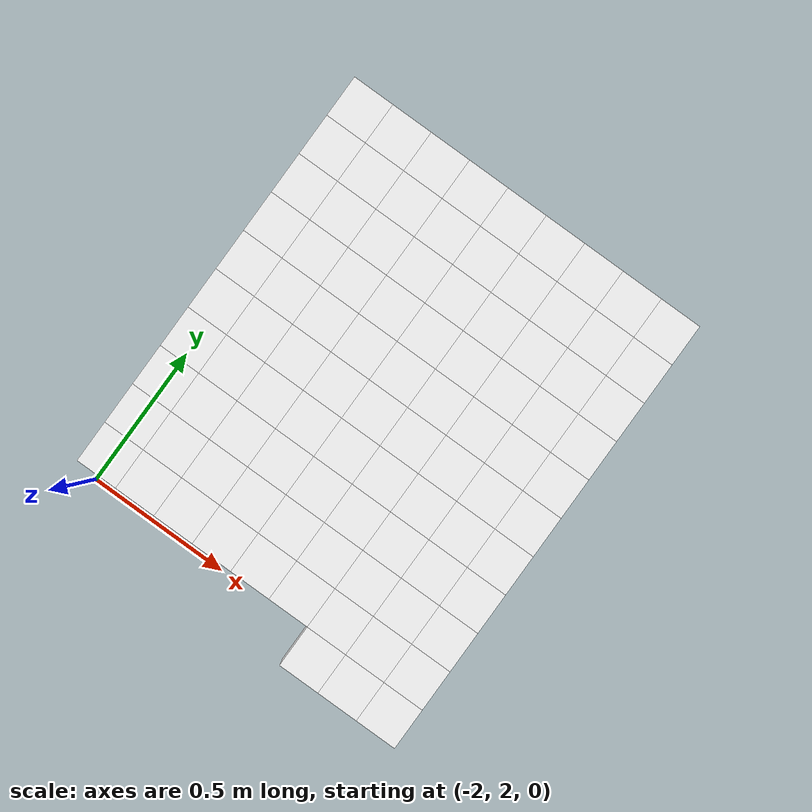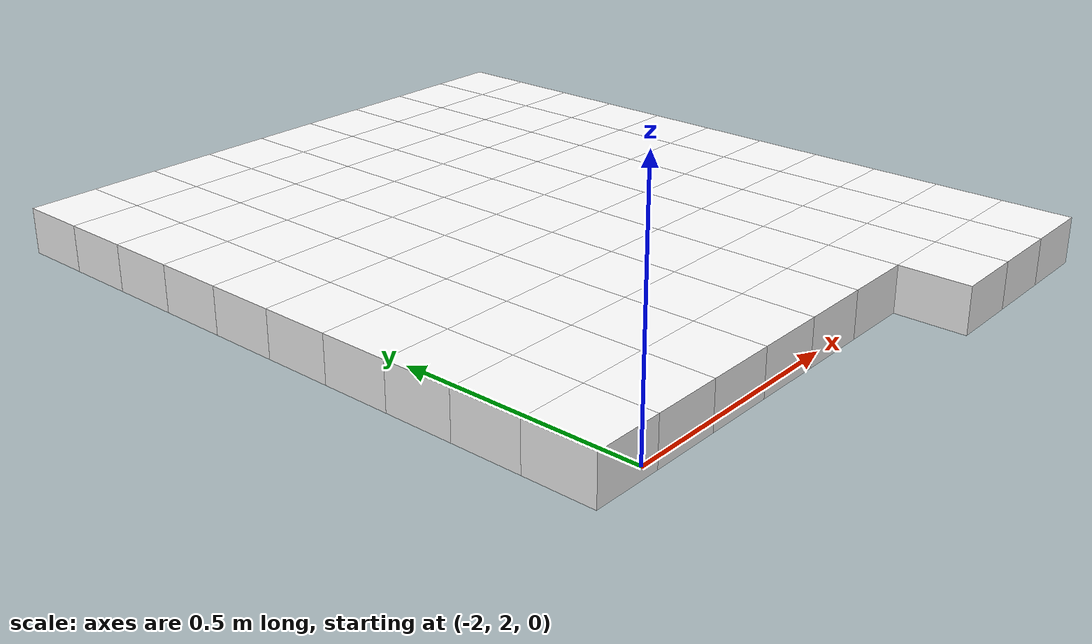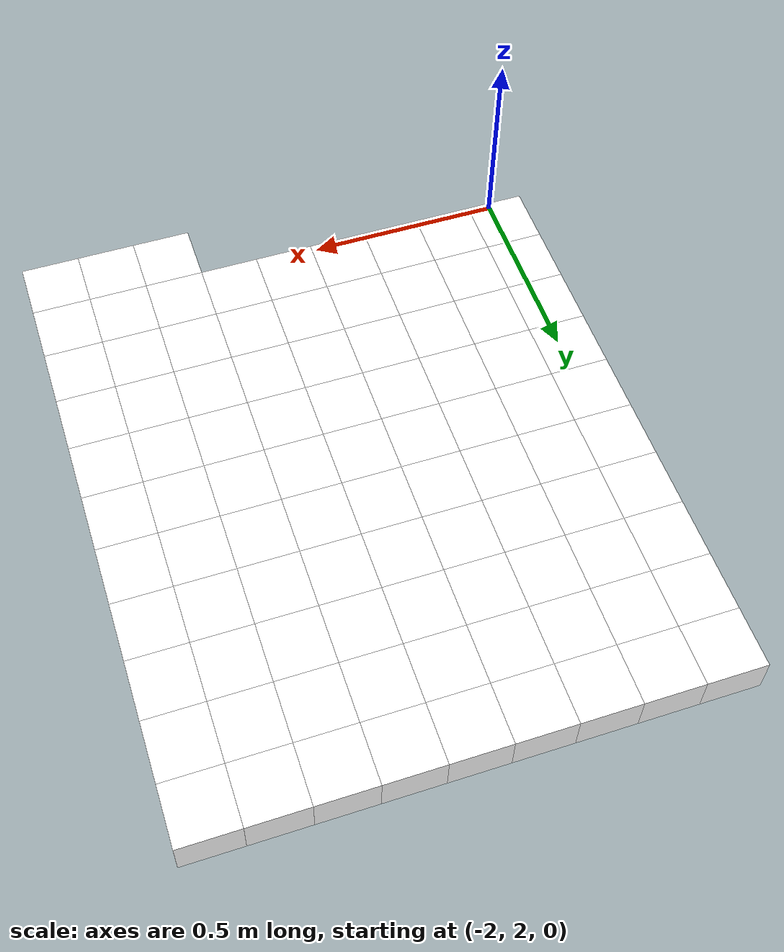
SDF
<sdf version="1.7">
 <world name="default">
  <include><uri>model://sun</uri></include>
  <model name="static_environment">
   <static>true</static>
   <link name="region_186">
    <pose>-1.1 1.9499999999999997 0.0 0.0 0.0 0.0</pose>
    <collision name="region_186_collision">
     <geometry><box><size>0.15 0.15 0.1</size></box></geometry>
     <surface><friction><ode><mu>1.0</mu><mu2>1.0</mu2></ode></friction></surface>
    </collision>
    <visual name="region_186_visual">
     <geometry><box><size>0.15 0.15 0.1</size></box></geometry>
     <material><ambient>1.0 1.0 1.0 1.0</ambient><diffuse>1.0 1.0 1.0 1.0</diffuse></material>
    </visual>
   </link>
   <link name="region_187">
    <pose>-0.95 1.9499999999999997 0.0 0.0 0.0 0.0</pose>
    <collision name="region_187_collision">
     <geometry><box><size>0.15 0.15 0.1</size></box></geometry>
     <surface><friction><ode><mu>1.0</mu><mu2>1.0</mu2></ode></friction></surface>
    </collision>
    <visual name="region_187_visual">
     <geometry><box><size>0.15 0.15 0.1</size></box></geometry>
     <material><ambient>1.0 1.0 1.0 1.0</ambient><diffuse>1.0 1.0 1.0 1.0</diffuse></material>
    </visual>
   </link>
   <link name="region_188">
    <pose>-0.8 1.9499999999999997 0.0 0.0 0.0 0.0</pose>
    <collision name="region_188_collision">
     <geometry><box><size>0.15 0.15 0.1</size></box></geometry>
     <surface><friction><ode><mu>1.0</mu><mu2>1.0</mu2></ode></friction></surface>
    </collision>
    <visual name="region_188_visual">
     <geometry><box><size>0.15 0.15 0.1</size></box></geometry>
     <material><ambient>1.0 1.0 1.0 1.0</ambient><diffuse>1.0 1.0 1.0 1.0</diffuse></material>
    </visual>
   </link>
   <link name="region_200">
    <pose>-2.0 2.0999999999999996 0.0 0.0 0.0 0.0</pose>
    <collision name="region_200_collision">
     <geometry><box><size>0.15 0.15 0.1</size></box></geometry>
     <surface><friction><ode><mu>1.0</mu><mu2>1.0</mu2></ode></friction></surface>
    </collision>
    <visual name="region_200_visual">
     <geometry><box><size>0.15 0.15 0.1</size></box></geometry>
     <material><ambient>1.0 1.0 1.0 1.0</ambient><diffuse>1.0 1.0 1.0 1.0</diffuse></material>
    </visual>
   </link>
   <link name="region_201">
    <pose>-1.85 2.0999999999999996 0.0 0.0 0.0 0.0</pose>
    <collision name="region_201_collision">
     <geometry><box><size>0.15 0.15 0.1</size></box></geometry>
     <surface><friction><ode><mu>1.0</mu><mu2>1.0</mu2></ode></friction></surface>
    </collision>
    <visual name="region_201_visual">
     <geometry><box><size>0.15 0.15 0.1</size></box></geometry>
     <material><ambient>1.0 1.0 1.0 1.0</ambient><diffuse>1.0 1.0 1.0 1.0</diffuse></material>
    </visual>
   </link>
   <link name="region_202">
    <pose>-1.7 2.0999999999999996 0.0 0.0 0.0 0.0</pose>
    <collision name="region_202_collision">
     <geometry><box><size>0.15 0.15 0.1</size></box></geometry>
     <surface><friction><ode><mu>1.0</mu><mu2>1.0</mu2></ode></friction></surface>
    </collision>
    <visual name="region_202_visual">
     <geometry><box><size>0.15 0.15 0.1</size></box></geometry>
     <material><ambient>1.0 1.0 1.0 1.0</ambient><diffuse>1.0 1.0 1.0 1.0</diffuse></material>
    </visual>
   </link>
   <link name="region_203">
    <pose>-1.55 2.0999999999999996 0.0 0.0 0.0 0.0</pose>
    <collision name="region_203_collision">
     <geometry><box><size>0.15 0.15 0.1</size></box></geometry>
     <surface><friction><ode><mu>1.0</mu><mu2>1.0</mu2></ode></friction></surface>
    </collision>
    <visual name="region_203_visual">
     <geometry><box><size>0.15 0.15 0.1</size></box></geometry>
     <material><ambient>1.0 1.0 1.0 1.0</ambient><diffuse>1.0 1.0 1.0 1.0</diffuse></material>
    </visual>
   </link>
   <link name="region_204">
    <pose>-1.4 2.0999999999999996 0.0 0.0 0.0 0.0</pose>
    <collision name="region_204_collision">
     <geometry><box><size>0.15 0.15 0.1</size></box></geometry>
     <surface><friction><ode><mu>1.0</mu><mu2>1.0</mu2></ode></friction></surface>
    </collision>
    <visual name="region_204_visual">
     <geometry><box><size>0.15 0.15 0.1</size></box></geometry>
     <material><ambient>1.0 1.0 1.0 1.0</ambient><diffuse>1.0 1.0 1.0 1.0</diffuse></material>
    </visual>
   </link>
   <link name="region_205">
    <pose>-1.25 2.0999999999999996 0.0 0.0 0.0 0.0</pose>
    <collision name="region_205_collision">
     <geometry><box><size>0.15 0.15 0.1</size></box></geometry>
     <surface><friction><ode><mu>1.0</mu><mu2>1.0</mu2></ode></friction></surface>
    </collision>
    <visual name="region_205_visual">
     <geometry><box><size>0.15 0.15 0.1</size></box></geometry>
     <material><ambient>1.0 1.0 1.0 1.0</ambient><diffuse>1.0 1.0 1.0 1.0</diffuse></material>
    </visual>
   </link>
   <link name="region_206">
    <pose>-1.1 2.0999999999999996 0.0 0.0 0.0 0.0</pose>
    <collision name="region_206_collision">
     <geometry><box><size>0.15 0.15 0.1</size></box></geometry>
     <surface><friction><ode><mu>1.0</mu><mu2>1.0</mu2></ode></friction></surface>
    </collision>
    <visual name="region_206_visual">
     <geometry><box><size>0.15 0.15 0.1</size></box></geometry>
     <material><ambient>1.0 1.0 1.0 1.0</ambient><diffuse>1.0 1.0 1.0 1.0</diffuse></material>
    </visual>
   </link>
   <link name="region_207">
    <pose>-0.95 2.0999999999999996 0.0 0.0 0.0 0.0</pose>
    <collision name="region_207_collision">
     <geometry><box><size>0.15 0.15 0.1</size></box></geometry>
     <surface><friction><ode><mu>1.0</mu><mu2>1.0</mu2></ode></friction></surface>
    </collision>
    <visual name="region_207_visual">
     <geometry><box><size>0.15 0.15 0.1</size></box></geometry>
     <material><ambient>1.0 1.0 1.0 1.0</ambient><diffuse>1.0 1.0 1.0 1.0</diffuse></material>
    </visual>
   </link>
   <link name="region_208">
    <pose>-0.8 2.0999999999999996 0.0 0.0 0.0 0.0</pose>
    <collision name="region_208_collision">
     <geometry><box><size>0.15 0.15 0.1</size></box></geometry>
     <surface><friction><ode><mu>1.0</mu><mu2>1.0</mu2></ode></friction></surface>
    </collision>
    <visual name="region_208_visual">
     <geometry><box><size>0.15 0.15 0.1</size></box></geometry>
     <material><ambient>1.0 1.0 1.0 1.0</ambient><diffuse>1.0 1.0 1.0 1.0</diffuse></material>
    </visual>
   </link>
   <link name="region_220">
    <pose>-2.0 2.2499999999999996 0.0 0.0 0.0 0.0</pose>
    <collision name="region_220_collision">
     <geometry><box><size>0.15 0.15 0.1</size></box></geometry>
     <surface><friction><ode><mu>1.0</mu><mu2>1.0</mu2></ode></friction></surface>
    </collision>
    <visual name="region_220_visual">
     <geometry><box><size>0.15 0.15 0.1</size></box></geometry>
     <material><ambient>1.0 1.0 1.0 1.0</ambient><diffuse>1.0 1.0 1.0 1.0</diffuse></material>
    </visual>
   </link>
   <link name="region_221">
    <pose>-1.85 2.2499999999999996 0.0 0.0 0.0 0.0</pose>
    <collision name="region_221_collision">
     <geometry><box><size>0.15 0.15 0.1</size></box></geometry>
     <surface><friction><ode><mu>1.0</mu><mu2>1.0</mu2></ode></friction></surface>
    </collision>
    <visual name="region_221_visual">
     <geometry><box><size>0.15 0.15 0.1</size></box></geometry>
     <material><ambient>1.0 1.0 1.0 1.0</ambient><diffuse>1.0 1.0 1.0 1.0</diffuse></material>
    </visual>
   </link>
   <link name="region_222">
    <pose>-1.7 2.2499999999999996 0.0 0.0 0.0 0.0</pose>
    <collision name="region_222_collision">
     <geometry><box><size>0.15 0.15 0.1</size></box></geometry>
     <surface><friction><ode><mu>1.0</mu><mu2>1.0</mu2></ode></friction></surface>
    </collision>
    <visual name="region_222_visual">
     <geometry><box><size>0.15 0.15 0.1</size></box></geometry>
     <material><ambient>1.0 1.0 1.0 1.0</ambient><diffuse>1.0 1.0 1.0 1.0</diffuse></material>
    </visual>
   </link>
   <link name="region_223">
    <pose>-1.55 2.2499999999999996 0.0 0.0 0.0 0.0</pose>
    <collision name="region_223_collision">
     <geometry><box><size>0.15 0.15 0.1</size></box></geometry>
     <surface><friction><ode><mu>1.0</mu><mu2>1.0</mu2></ode></friction></surface>
    </collision>
    <visual name="region_223_visual">
     <geometry><box><size>0.15 0.15 0.1</size></box></geometry>
     <material><ambient>1.0 1.0 1.0 1.0</ambient><diffuse>1.0 1.0 1.0 1.0</diffuse></material>
    </visual>
   </link>
   <link name="region_224">
    <pose>-1.4 2.2499999999999996 0.0 0.0 0.0 0.0</pose>
    <collision name="region_224_collision">
     <geometry><box><size>0.15 0.15 0.1</size></box></geometry>
     <surface><friction><ode><mu>1.0</mu><mu2>1.0</mu2></ode></friction></surface>
    </collision>
    <visual name="region_224_visual">
     <geometry><box><size>0.15 0.15 0.1</size></box></geometry>
     <material><ambient>1.0 1.0 1.0 1.0</ambient><diffuse>1.0 1.0 1.0 1.0</diffuse></material>
    </visual>
   </link>
   <link name="region_225">
    <pose>-1.25 2.2499999999999996 0.0 0.0 0.0 0.0</pose>
    <collision name="region_225_collision">
     <geometry><box><size>0.15 0.15 0.1</size></box></geometry>
     <surface><friction><ode><mu>1.0</mu><mu2>1.0</mu2></ode></friction></surface>
    </collision>
    <visual name="region_225_visual">
     <geometry><box><size>0.15 0.15 0.1</size></box></geometry>
     <material><ambient>1.0 1.0 1.0 1.0</ambient><diffuse>1.0 1.0 1.0 1.0</diffuse></material>
    </visual>
   </link>
   <link name="region_226">
    <pose>-1.1 2.2499999999999996 0.0 0.0 0.0 0.0</pose>
    <collision name="region_226_collision">
     <geometry><box><size>0.15 0.15 0.1</size></box></geometry>
     <surface><friction><ode><mu>1.0</mu><mu2>1.0</mu2></ode></friction></surface>
    </collision>
    <visual name="region_226_visual">
     <geometry><box><size>0.15 0.15 0.1</size></box></geometry>
     <material><ambient>1.0 1.0 1.0 1.0</ambient><diffuse>1.0 1.0 1.0 1.0</diffuse></material>
    </visual>
   </link>
   <link name="region_227">
    <pose>-0.95 2.2499999999999996 0.0 0.0 0.0 0.0</pose>
    <collision name="region_227_collision">
     <geometry><box><size>0.15 0.15 0.1</size></box></geometry>
     <surface><friction><ode><mu>1.0</mu><mu2>1.0</mu2></ode></friction></surface>
    </collision>
    <visual name="region_227_visual">
     <geometry><box><size>0.15 0.15 0.1</size></box></geometry>
     <material><ambient>1.0 1.0 1.0 1.0</ambient><diffuse>1.0 1.0 1.0 1.0</diffuse></material>
    </visual>
   </link>
   <link name="region_228">
    <pose>-0.8 2.2499999999999996 0.0 0.0 0.0 0.0</pose>
    <collision name="region_228_collision">
     <geometry><box><size>0.15 0.15 0.1</size></box></geometry>
     <surface><friction><ode><mu>1.0</mu><mu2>1.0</mu2></ode></friction></surface>
    </collision>
    <visual name="region_228_visual">
     <geometry><box><size>0.15 0.15 0.1</size></box></geometry>
     <material><ambient>1.0 1.0 1.0 1.0</ambient><diffuse>1.0 1.0 1.0 1.0</diffuse></material>
    </visual>
   </link>
   <link name="region_240">
    <pose>-2.0 2.3999999999999995 0.0 0.0 0.0 0.0</pose>
    <collision name="region_240_collision">
     <geometry><box><size>0.15 0.15 0.1</size></box></geometry>
     <surface><friction><ode><mu>1.0</mu><mu2>1.0</mu2></ode></friction></surface>
    </collision>
    <visual name="region_240_visual">
     <geometry><box><size>0.15 0.15 0.1</size></box></geometry>
     <material><ambient>1.0 1.0 1.0 1.0</ambient><diffuse>1.0 1.0 1.0 1.0</diffuse></material>
    </visual>
   </link>
   <link name="region_241">
    <pose>-1.85 2.3999999999999995 0.0 0.0 0.0 0.0</pose>
    <collision name="region_241_collision">
     <geometry><box><size>0.15 0.15 0.1</size></box></geometry>
     <surface><friction><ode><mu>1.0</mu><mu2>1.0</mu2></ode></friction></surface>
    </collision>
    <visual name="region_241_visual">
     <geometry><box><size>0.15 0.15 0.1</size></box></geometry>
     <material><ambient>1.0 1.0 1.0 1.0</ambient><diffuse>1.0 1.0 1.0 1.0</diffuse></material>
    </visual>
   </link>
   <link name="region_242">
    <pose>-1.7 2.3999999999999995 0.0 0.0 0.0 0.0</pose>
    <collision name="region_242_collision">
     <geometry><box><size>0.15 0.15 0.1</size></box></geometry>
     <surface><friction><ode><mu>1.0</mu><mu2>1.0</mu2></ode></friction></surface>
    </collision>
    <visual name="region_242_visual">
     <geometry><box><size>0.15 0.15 0.1</size></box></geometry>
     <material><ambient>1.0 1.0 1.0 1.0</ambient><diffuse>1.0 1.0 1.0 1.0</diffuse></material>
    </visual>
   </link>
   <link name="region_243">
    <pose>-1.55 2.3999999999999995 0.0 0.0 0.0 0.0</pose>
    <collision name="region_243_collision">
     <geometry><box><size>0.15 0.15 0.1</size></box></geometry>
     <surface><friction><ode><mu>1.0</mu><mu2>1.0</mu2></ode></friction></surface>
    </collision>
    <visual name="region_243_visual">
     <geometry><box><size>0.15 0.15 0.1</size></box></geometry>
     <material><ambient>1.0 1.0 1.0 1.0</ambient><diffuse>1.0 1.0 1.0 1.0</diffuse></material>
    </visual>
   </link>
   <link name="region_244">
    <pose>-1.4 2.3999999999999995 0.0 0.0 0.0 0.0</pose>
    <collision name="region_244_collision">
     <geometry><box><size>0.15 0.15 0.1</size></box></geometry>
     <surface><friction><ode><mu>1.0</mu><mu2>1.0</mu2></ode></friction></surface>
    </collision>
    <visual name="region_244_visual">
     <geometry><box><size>0.15 0.15 0.1</size></box></geometry>
     <material><ambient>1.0 1.0 1.0 1.0</ambient><diffuse>1.0 1.0 1.0 1.0</diffuse></material>
    </visual>
   </link>
   <link name="region_245">
    <pose>-1.25 2.3999999999999995 0.0 0.0 0.0 0.0</pose>
    <collision name="region_245_collision">
     <geometry><box><size>0.15 0.15 0.1</size></box></geometry>
     <surface><friction><ode><mu>1.0</mu><mu2>1.0</mu2></ode></friction></surface>
    </collision>
    <visual name="region_245_visual">
     <geometry><box><size>0.15 0.15 0.1</size></box></geometry>
     <material><ambient>1.0 1.0 1.0 1.0</ambient><diffuse>1.0 1.0 1.0 1.0</diffuse></material>
    </visual>
   </link>
   <link name="region_246">
    <pose>-1.1 2.3999999999999995 0.0 0.0 0.0 0.0</pose>
    <collision name="region_246_collision">
     <geometry><box><size>0.15 0.15 0.1</size></box></geometry>
     <surface><friction><ode><mu>1.0</mu><mu2>1.0</mu2></ode></friction></surface>
    </collision>
    <visual name="region_246_visual">
     <geometry><box><size>0.15 0.15 0.1</size></box></geometry>
     <material><ambient>1.0 1.0 1.0 1.0</ambient><diffuse>1.0 1.0 1.0 1.0</diffuse></material>
    </visual>
   </link>
   <link name="region_247">
    <pose>-0.95 2.3999999999999995 0.0 0.0 0.0 0.0</pose>
    <collision name="region_247_collision">
     <geometry><box><size>0.15 0.15 0.1</size></box></geometry>
     <surface><friction><ode><mu>1.0</mu><mu2>1.0</mu2></ode></friction></surface>
    </collision>
    <visual name="region_247_visual">
     <geometry><box><size>0.15 0.15 0.1</size></box></geometry>
     <material><ambient>1.0 1.0 1.0 1.0</ambient><diffuse>1.0 1.0 1.0 1.0</diffuse></material>
    </visual>
   </link>
   <link name="region_248">
    <pose>-0.8 2.3999999999999995 0.0 0.0 0.0 0.0</pose>
    <collision name="region_248_collision">
     <geometry><box><size>0.15 0.15 0.1</size></box></geometry>
     <surface><friction><ode><mu>1.0</mu><mu2>1.0</mu2></ode></friction></surface>
    </collision>
    <visual name="region_248_visual">
     <geometry><box><size>0.15 0.15 0.1</size></box></geometry>
     <material><ambient>1.0 1.0 1.0 1.0</ambient><diffuse>1.0 1.0 1.0 1.0</diffuse></material>
    </visual>
   </link>
   <link name="region_260">
    <pose>-2.0 2.5499999999999994 0.0 0.0 0.0 0.0</pose>
    <collision name="region_260_collision">
     <geometry><box><size>0.15 0.15 0.1</size></box></geometry>
     <surface><friction><ode><mu>1.0</mu><mu2>1.0</mu2></ode></friction></surface>
    </collision>
    <visual name="region_260_visual">
     <geometry><box><size>0.15 0.15 0.1</size></box></geometry>
     <material><ambient>1.0 1.0 1.0 1.0</ambient><diffuse>1.0 1.0 1.0 1.0</diffuse></material>
    </visual>
   </link>
   <link name="region_261">
    <pose>-1.85 2.5499999999999994 0.0 0.0 0.0 0.0</pose>
    <collision name="region_261_collision">
     <geometry><box><size>0.15 0.15 0.1</size></box></geometry>
     <surface><friction><ode><mu>1.0</mu><mu2>1.0</mu2></ode></friction></surface>
    </collision>
    <visual name="region_261_visual">
     <geometry><box><size>0.15 0.15 0.1</size></box></geometry>
     <material><ambient>1.0 1.0 1.0 1.0</ambient><diffuse>1.0 1.0 1.0 1.0</diffuse></material>
    </visual>
   </link>
   <link name="region_262">
    <pose>-1.7 2.5499999999999994 0.0 0.0 0.0 0.0</pose>
    <collision name="region_262_collision">
     <geometry><box><size>0.15 0.15 0.1</size></box></geometry>
     <surface><friction><ode><mu>1.0</mu><mu2>1.0</mu2></ode></friction></surface>
    </collision>
    <visual name="region_262_visual">
     <geometry><box><size>0.15 0.15 0.1</size></box></geometry>
     <material><ambient>1.0 1.0 1.0 1.0</ambient><diffuse>1.0 1.0 1.0 1.0</diffuse></material>
    </visual>
   </link>
   <link name="region_263">
    <pose>-1.55 2.5499999999999994 0.0 0.0 0.0 0.0</pose>
    <collision name="region_263_collision">
     <geometry><box><size>0.15 0.15 0.1</size></box></geometry>
     <surface><friction><ode><mu>1.0</mu><mu2>1.0</mu2></ode></friction></surface>
    </collision>
    <visual name="region_263_visual">
     <geometry><box><size>0.15 0.15 0.1</size></box></geometry>
     <material><ambient>1.0 1.0 1.0 1.0</ambient><diffuse>1.0 1.0 1.0 1.0</diffuse></material>
    </visual>
   </link>
   <link name="region_264">
    <pose>-1.4 2.5499999999999994 0.0 0.0 0.0 0.0</pose>
    <collision name="region_264_collision">
     <geometry><box><size>0.15 0.15 0.1</size></box></geometry>
     <surface><friction><ode><mu>1.0</mu><mu2>1.0</mu2></ode></friction></surface>
    </collision>
    <visual name="region_264_visual">
     <geometry><box><size>0.15 0.15 0.1</size></box></geometry>
     <material><ambient>1.0 1.0 1.0 1.0</ambient><diffuse>1.0 1.0 1.0 1.0</diffuse></material>
    </visual>
   </link>
   <link name="region_265">
    <pose>-1.25 2.5499999999999994 0.0 0.0 0.0 0.0</pose>
    <collision name="region_265_collision">
     <geometry><box><size>0.15 0.15 0.1</size></box></geometry>
     <surface><friction><ode><mu>1.0</mu><mu2>1.0</mu2></ode></friction></surface>
    </collision>
    <visual name="region_265_visual">
     <geometry><box><size>0.15 0.15 0.1</size></box></geometry>
     <material><ambient>1.0 1.0 1.0 1.0</ambient><diffuse>1.0 1.0 1.0 1.0</diffuse></material>
    </visual>
   </link>
   <link name="region_266">
    <pose>-1.1 2.5499999999999994 0.0 0.0 0.0 0.0</pose>
    <collision name="region_266_collision">
     <geometry><box><size>0.15 0.15 0.1</size></box></geometry>
     <surface><friction><ode><mu>1.0</mu><mu2>1.0</mu2></ode></friction></surface>
    </collision>
    <visual name="region_266_visual">
     <geometry><box><size>0.15 0.15 0.1</size></box></geometry>
     <material><ambient>1.0 1.0 1.0 1.0</ambient><diffuse>1.0 1.0 1.0 1.0</diffuse></material>
    </visual>
   </link>
   <link name="region_267">
    <pose>-0.95 2.5499999999999994 0.0 0.0 0.0 0.0</pose>
    <collision name="region_267_collision">
     <geometry><box><size>0.15 0.15 0.1</size></box></geometry>
     <surface><friction><ode><mu>1.0</mu><mu2>1.0</mu2></ode></friction></surface>
    </collision>
    <visual name="region_267_visual">
     <geometry><box><size>0.15 0.15 0.1</size></box></geometry>
     <material><ambient>1.0 1.0 1.0 1.0</ambient><diffuse>1.0 1.0 1.0 1.0</diffuse></material>
    </visual>
   </link>
   <link name="region_268">
    <pose>-0.8 2.5499999999999994 0.0 0.0 0.0 0.0</pose>
    <collision name="region_268_collision">
     <geometry><box><size>0.15 0.15 0.1</size></box></geometry>
     <surface><friction><ode><mu>1.0</mu><mu2>1.0</mu2></ode></friction></surface>
    </collision>
    <visual name="region_268_visual">
     <geometry><box><size>0.15 0.15 0.1</size></box></geometry>
     <material><ambient>1.0 1.0 1.0 1.0</ambient><diffuse>1.0 1.0 1.0 1.0</diffuse></material>
    </visual>
   </link>
   <link name="region_280">
    <pose>-2.0 2.6999999999999997 0.0 0.0 0.0 0.0</pose>
    <collision name="region_280_collision">
     <geometry><box><size>0.15 0.15 0.1</size></box></geometry>
     <surface><friction><ode><mu>1.0</mu><mu2>1.0</mu2></ode></friction></surface>
    </collision>
    <visual name="region_280_visual">
     <geometry><box><size>0.15 0.15 0.1</size></box></geometry>
     <material><ambient>1.0 1.0 1.0 1.0</ambient><diffuse>1.0 1.0 1.0 1.0</diffuse></material>
    </visual>
   </link>
   <link name="region_281">
    <pose>-1.85 2.6999999999999997 0.0 0.0 0.0 0.0</pose>
    <collision name="region_281_collision">
     <geometry><box><size>0.15 0.15 0.1</size></box></geometry>
     <surface><friction><ode><mu>1.0</mu><mu2>1.0</mu2></ode></friction></surface>
    </collision>
    <visual name="region_281_visual">
     <geometry><box><size>0.15 0.15 0.1</size></box></geometry>
     <material><ambient>1.0 1.0 1.0 1.0</ambient><diffuse>1.0 1.0 1.0 1.0</diffuse></material>
    </visual>
   </link>
   <link name="region_282">
    <pose>-1.7 2.6999999999999997 0.0 0.0 0.0 0.0</pose>
    <collision name="region_282_collision">
     <geometry><box><size>0.15 0.15 0.1</size></box></geometry>
     <surface><friction><ode><mu>1.0</mu><mu2>1.0</mu2></ode></friction></surface>
    </collision>
    <visual name="region_282_visual">
     <geometry><box><size>0.15 0.15 0.1</size></box></geometry>
     <material><ambient>1.0 1.0 1.0 1.0</ambient><diffuse>1.0 1.0 1.0 1.0</diffuse></material>
    </visual>
   </link>
   <link name="region_283">
    <pose>-1.55 2.6999999999999997 0.0 0.0 0.0 0.0</pose>
    <collision name="region_283_collision">
     <geometry><box><size>0.15 0.15 0.1</size></box></geometry>
     <surface><friction><ode><mu>1.0</mu><mu2>1.0</mu2></ode></friction></surface>
    </collision>
    <visual name="region_283_visual">
     <geometry><box><size>0.15 0.15 0.1</size></box></geometry>
     <material><ambient>1.0 1.0 1.0 1.0</ambient><diffuse>1.0 1.0 1.0 1.0</diffuse></material>
    </visual>
   </link>
   <link name="region_284">
    <pose>-1.4 2.6999999999999997 0.0 0.0 0.0 0.0</pose>
    <collision name="region_284_collision">
     <geometry><box><size>0.15 0.15 0.1</size></box></geometry>
     <surface><friction><ode><mu>1.0</mu><mu2>1.0</mu2></ode></friction></surface>
    </collision>
    <visual name="region_284_visual">
     <geometry><box><size>0.15 0.15 0.1</size></box></geometry>
     <material><ambient>1.0 1.0 1.0 1.0</ambient><diffuse>1.0 1.0 1.0 1.0</diffuse></material>
    </visual>
   </link>
   <link name="region_285">
    <pose>-1.25 2.6999999999999997 0.0 0.0 0.0 0.0</pose>
    <collision name="region_285_collision">
     <geometry><box><size>0.15 0.15 0.1</size></box></geometry>
     <surface><friction><ode><mu>1.0</mu><mu2>1.0</mu2></ode></friction></surface>
    </collision>
    <visual name="region_285_visual">
     <geometry><box><size>0.15 0.15 0.1</size></box></geometry>
     <material><ambient>1.0 1.0 1.0 1.0</ambient><diffuse>1.0 1.0 1.0 1.0</diffuse></material>
    </visual>
   </link>
   <link name="region_286">
    <pose>-1.1 2.6999999999999997 0.0 0.0 0.0 0.0</pose>
    <collision name="region_286_collision">
     <geometry><box><size>0.15 0.15 0.1</size></box></geometry>
     <surface><friction><ode><mu>1.0</mu><mu2>1.0</mu2></ode></friction></surface>
    </collision>
    <visual name="region_286_visual">
     <geometry><box><size>0.15 0.15 0.1</size></box></geometry>
     <material><ambient>1.0 1.0 1.0 1.0</ambient><diffuse>1.0 1.0 1.0 1.0</diffuse></material>
    </visual>
   </link>
   <link name="region_287">
    <pose>-0.95 2.6999999999999997 0.0 0.0 0.0 0.0</pose>
    <collision name="region_287_collision">
     <geometry><box><size>0.15 0.15 0.1</size></box></geometry>
     <surface><friction><ode><mu>1.0</mu><mu2>1.0</mu2></ode></friction></surface>
    </collision>
    <visual name="region_287_visual">
     <geometry><box><size>0.15 0.15 0.1</size></box></geometry>
     <material><ambient>1.0 1.0 1.0 1.0</ambient><diffuse>1.0 1.0 1.0 1.0</diffuse></material>
    </visual>
   </link>
   <link name="region_288">
    <pose>-0.8 2.6999999999999997 0.0 0.0 0.0 0.0</pose>
    <collision name="region_288_collision">
     <geometry><box><size>0.15 0.15 0.1</size></box></geometry>
     <surface><friction><ode><mu>1.0</mu><mu2>1.0</mu2></ode></friction></surface>
    </collision>
    <visual name="region_288_visual">
     <geometry><box><size>0.15 0.15 0.1</size></box></geometry>
     <material><ambient>1.0 1.0 1.0 1.0</ambient><diffuse>1.0 1.0 1.0 1.0</diffuse></material>
    </visual>
   </link>
   <link name="region_300">
    <pose>-2.0 2.8499999999999996 0.0 0.0 0.0 0.0</pose>
    <collision name="region_300_collision">
     <geometry><box><size>0.15 0.15 0.1</size></box></geometry>
     <surface><friction><ode><mu>1.0</mu><mu2>1.0</mu2></ode></friction></surface>
    </collision>
    <visual name="region_300_visual">
     <geometry><box><size>0.15 0.15 0.1</size></box></geometry>
     <material><ambient>1.0 1.0 1.0 1.0</ambient><diffuse>1.0 1.0 1.0 1.0</diffuse></material>
    </visual>
   </link>
   <link name="region_301">
    <pose>-1.85 2.8499999999999996 0.0 0.0 0.0 0.0</pose>
    <collision name="region_301_collision">
     <geometry><box><size>0.15 0.15 0.1</size></box></geometry>
     <surface><friction><ode><mu>1.0</mu><mu2>1.0</mu2></ode></friction></surface>
    </collision>
    <visual name="region_301_visual">
     <geometry><box><size>0.15 0.15 0.1</size></box></geometry>
     <material><ambient>1.0 1.0 1.0 1.0</ambient><diffuse>1.0 1.0 1.0 1.0</diffuse></material>
    </visual>
   </link>
   <link name="region_302">
    <pose>-1.7 2.8499999999999996 0.0 0.0 0.0 0.0</pose>
    <collision name="region_302_collision">
     <geometry><box><size>0.15 0.15 0.1</size></box></geometry>
     <surface><friction><ode><mu>1.0</mu><mu2>1.0</mu2></ode></friction></surface>
    </collision>
    <visual name="region_302_visual">
     <geometry><box><size>0.15 0.15 0.1</size></box></geometry>
     <material><ambient>1.0 1.0 1.0 1.0</ambient><diffuse>1.0 1.0 1.0 1.0</diffuse></material>
    </visual>
   </link>
   <link name="region_303">
    <pose>-1.55 2.8499999999999996 0.0 0.0 0.0 0.0</pose>
    <collision name="region_303_collision">
     <geometry><box><size>0.15 0.15 0.1</size></box></geometry>
     <surface><friction><ode><mu>1.0</mu><mu2>1.0</mu2></ode></friction></surface>
    </collision>
    <visual name="region_303_visual">
     <geometry><box><size>0.15 0.15 0.1</size></box></geometry>
     <material><ambient>1.0 1.0 1.0 1.0</ambient><diffuse>1.0 1.0 1.0 1.0</diffuse></material>
    </visual>
   </link>
   <link name="region_304">
    <pose>-1.4 2.8499999999999996 0.0 0.0 0.0 0.0</pose>
    <collision name="region_304_collision">
     <geometry><box><size>0.15 0.15 0.1</size></box></geometry>
     <surface><friction><ode><mu>1.0</mu><mu2>1.0</mu2></ode></friction></surface>
    </collision>
    <visual name="region_304_visual">
     <geometry><box><size>0.15 0.15 0.1</size></box></geometry>
     <material><ambient>1.0 1.0 1.0 1.0</ambient><diffuse>1.0 1.0 1.0 1.0</diffuse></material>
    </visual>
   </link>
   <link name="region_305">
    <pose>-1.25 2.8499999999999996 0.0 0.0 0.0 0.0</pose>
    <collision name="region_305_collision">
     <geometry><box><size>0.15 0.15 0.1</size></box></geometry>
     <surface><friction><ode><mu>1.0</mu><mu2>1.0</mu2></ode></friction></surface>
    </collision>
    <visual name="region_305_visual">
     <geometry><box><size>0.15 0.15 0.1</size></box></geometry>
     <material><ambient>1.0 1.0 1.0 1.0</ambient><diffuse>1.0 1.0 1.0 1.0</diffuse></material>
    </visual>
   </link>
   <link name="region_306">
    <pose>-1.1 2.8499999999999996 0.0 0.0 0.0 0.0</pose>
    <collision name="region_306_collision">
     <geometry><box><size>0.15 0.15 0.1</size></box></geometry>
     <surface><friction><ode><mu>1.0</mu><mu2>1.0</mu2></ode></friction></surface>
    </collision>
    <visual name="region_306_visual">
     <geometry><box><size>0.15 0.15 0.1</size></box></geometry>
     <material><ambient>1.0 1.0 1.0 1.0</ambient><diffuse>1.0 1.0 1.0 1.0</diffuse></material>
    </visual>
   </link>
   <link name="region_307">
    <pose>-0.95 2.8499999999999996 0.0 0.0 0.0 0.0</pose>
    <collision name="region_307_collision">
     <geometry><box><size>0.15 0.15 0.1</size></box></geometry>
     <surface><friction><ode><mu>1.0</mu><mu2>1.0</mu2></ode></friction></surface>
    </collision>
    <visual name="region_307_visual">
     <geometry><box><size>0.15 0.15 0.1</size></box></geometry>
     <material><ambient>1.0 1.0 1.0 1.0</ambient><diffuse>1.0 1.0 1.0 1.0</diffuse></material>
    </visual>
   </link>
   <link name="region_308">
    <pose>-0.8 2.8499999999999996 0.0 0.0 0.0 0.0</pose>
    <collision name="region_308_collision">
     <geometry><box><size>0.15 0.15 0.1</size></box></geometry>
     <surface><friction><ode><mu>1.0</mu><mu2>1.0</mu2></ode></friction></surface>
    </collision>
    <visual name="region_308_visual">
     <geometry><box><size>0.15 0.15 0.1</size></box></geometry>
     <material><ambient>1.0 1.0 1.0 1.0</ambient><diffuse>1.0 1.0 1.0 1.0</diffuse></material>
    </visual>
   </link>
   <link name="region_320">
    <pose>-2.0 2.9999999999999996 0.0 0.0 0.0 0.0</pose>
    <collision name="region_320_collision">
     <geometry><box><size>0.15 0.15 0.1</size></box></geometry>
     <surface><friction><ode><mu>1.0</mu><mu2>1.0</mu2></ode></friction></surface>
    </collision>
    <visual name="region_320_visual">
     <geometry><box><size>0.15 0.15 0.1</size></box></geometry>
     <material><ambient>1.0 1.0 1.0 1.0</ambient><diffuse>1.0 1.0 1.0 1.0</diffuse></material>
    </visual>
   </link>
   <link name="region_321">
    <pose>-1.85 2.9999999999999996 0.0 0.0 0.0 0.0</pose>
    <collision name="region_321_collision">
     <geometry><box><size>0.15 0.15 0.1</size></box></geometry>
     <surface><friction><ode><mu>1.0</mu><mu2>1.0</mu2></ode></friction></surface>
    </collision>
    <visual name="region_321_visual">
     <geometry><box><size>0.15 0.15 0.1</size></box></geometry>
     <material><ambient>1.0 1.0 1.0 1.0</ambient><diffuse>1.0 1.0 1.0 1.0</diffuse></material>
    </visual>
   </link>
   <link name="region_322">
    <pose>-1.7 2.9999999999999996 0.0 0.0 0.0 0.0</pose>
    <collision name="region_322_collision">
     <geometry><box><size>0.15 0.15 0.1</size></box></geometry>
     <surface><friction><ode><mu>1.0</mu><mu2>1.0</mu2></ode></friction></surface>
    </collision>
    <visual name="region_322_visual">
     <geometry><box><size>0.15 0.15 0.1</size></box></geometry>
     <material><ambient>1.0 1.0 1.0 1.0</ambient><diffuse>1.0 1.0 1.0 1.0</diffuse></material>
    </visual>
   </link>
   <link name="region_323">
    <pose>-1.55 2.9999999999999996 0.0 0.0 0.0 0.0</pose>
    <collision name="region_323_collision">
     <geometry><box><size>0.15 0.15 0.1</size></box></geometry>
     <surface><friction><ode><mu>1.0</mu><mu2>1.0</mu2></ode></friction></surface>
    </collision>
    <visual name="region_323_visual">
     <geometry><box><size>0.15 0.15 0.1</size></box></geometry>
     <material><ambient>1.0 1.0 1.0 1.0</ambient><diffuse>1.0 1.0 1.0 1.0</diffuse></material>
    </visual>
   </link>
   <link name="region_324">
    <pose>-1.4 2.9999999999999996 0.0 0.0 0.0 0.0</pose>
    <collision name="region_324_collision">
     <geometry><box><size>0.15 0.15 0.1</size></box></geometry>
     <surface><friction><ode><mu>1.0</mu><mu2>1.0</mu2></ode></friction></surface>
    </collision>
    <visual name="region_324_visual">
     <geometry><box><size>0.15 0.15 0.1</size></box></geometry>
     <material><ambient>1.0 1.0 1.0 1.0</ambient><diffuse>1.0 1.0 1.0 1.0</diffuse></material>
    </visual>
   </link>
   <link name="region_325">
    <pose>-1.25 2.9999999999999996 0.0 0.0 0.0 0.0</pose>
    <collision name="region_325_collision">
     <geometry><box><size>0.15 0.15 0.1</size></box></geometry>
     <surface><friction><ode><mu>1.0</mu><mu2>1.0</mu2></ode></friction></surface>
    </collision>
    <visual name="region_325_visual">
     <geometry><box><size>0.15 0.15 0.1</size></box></geometry>
     <material><ambient>1.0 1.0 1.0 1.0</ambient><diffuse>1.0 1.0 1.0 1.0</diffuse></material>
    </visual>
   </link>
   <link name="region_326">
    <pose>-1.1 2.9999999999999996 0.0 0.0 0.0 0.0</pose>
    <collision name="region_326_collision">
     <geometry><box><size>0.15 0.15 0.1</size></box></geometry>
     <surface><friction><ode><mu>1.0</mu><mu2>1.0</mu2></ode></friction></surface>
    </collision>
    <visual name="region_326_visual">
     <geometry><box><size>0.15 0.15 0.1</size></box></geometry>
     <material><ambient>1.0 1.0 1.0 1.0</ambient><diffuse>1.0 1.0 1.0 1.0</diffuse></material>
    </visual>
   </link>
   <link name="region_327">
    <pose>-0.95 2.9999999999999996 0.0 0.0 0.0 0.0</pose>
    <collision name="region_327_collision">
     <geometry><box><size>0.15 0.15 0.1</size></box></geometry>
     <surface><friction><ode><mu>1.0</mu><mu2>1.0</mu2></ode></friction></surface>
    </collision>
    <visual name="region_327_visual">
     <geometry><box><size>0.15 0.15 0.1</size></box></geometry>
     <material><ambient>1.0 1.0 1.0 1.0</ambient><diffuse>1.0 1.0 1.0 1.0</diffuse></material>
    </visual>
   </link>
   <link name="region_328">
    <pose>-0.8 2.9999999999999996 0.0 0.0 0.0 0.0</pose>
    <collision name="region_328_collision">
     <geometry><box><size>0.15 0.15 0.1</size></box></geometry>
     <surface><friction><ode><mu>1.0</mu><mu2>1.0</mu2></ode></friction></surface>
    </collision>
    <visual name="region_328_visual">
     <geometry><box><size>0.15 0.15 0.1</size></box></geometry>
     <material><ambient>1.0 1.0 1.0 1.0</ambient><diffuse>1.0 1.0 1.0 1.0</diffuse></material>
    </visual>
   </link>
   <link name="region_340">
    <pose>-2.0 3.1499999999999995 0.0 0.0 0.0 0.0</pose>
    <collision name="region_340_collision">
     <geometry><box><size>0.15 0.15 0.1</size></box></geometry>
     <surface><friction><ode><mu>1.0</mu><mu2>1.0</mu2></ode></friction></surface>
    </collision>
    <visual name="region_340_visual">
     <geometry><box><size>0.15 0.15 0.1</size></box></geometry>
     <material><ambient>1.0 1.0 1.0 1.0</ambient><diffuse>1.0 1.0 1.0 1.0</diffuse></material>
    </visual>
   </link>
   <link name="region_341">
    <pose>-1.85 3.1499999999999995 0.0 0.0 0.0 0.0</pose>
    <collision name="region_341_collision">
     <geometry><box><size>0.15 0.15 0.1</size></box></geometry>
     <surface><friction><ode><mu>1.0</mu><mu2>1.0</mu2></ode></friction></surface>
    </collision>
    <visual name="region_341_visual">
     <geometry><box><size>0.15 0.15 0.1</size></box></geometry>
     <material><ambient>1.0 1.0 1.0 1.0</ambient><diffuse>1.0 1.0 1.0 1.0</diffuse></material>
    </visual>
   </link>
   <link name="region_342">
    <pose>-1.7 3.1499999999999995 0.0 0.0 0.0 0.0</pose>
    <collision name="region_342_collision">
     <geometry><box><size>0.15 0.15 0.1</size></box></geometry>
     <surface><friction><ode><mu>1.0</mu><mu2>1.0</mu2></ode></friction></surface>
    </collision>
    <visual name="region_342_visual">
     <geometry><box><size>0.15 0.15 0.1</size></box></geometry>
     <material><ambient>1.0 1.0 1.0 1.0</ambient><diffuse>1.0 1.0 1.0 1.0</diffuse></material>
    </visual>
   </link>
   <link name="region_343">
    <pose>-1.55 3.1499999999999995 0.0 0.0 0.0 0.0</pose>
    <collision name="region_343_collision">
     <geometry><box><size>0.15 0.15 0.1</size></box></geometry>
     <surface><friction><ode><mu>1.0</mu><mu2>1.0</mu2></ode></friction></surface>
    </collision>
    <visual name="region_343_visual">
     <geometry><box><size>0.15 0.15 0.1</size></box></geometry>
     <material><ambient>1.0 1.0 1.0 1.0</ambient><diffuse>1.0 1.0 1.0 1.0</diffuse></material>
    </visual>
   </link>
   <link name="region_344">
    <pose>-1.4 3.1499999999999995 0.0 0.0 0.0 0.0</pose>
    <collision name="region_344_collision">
     <geometry><box><size>0.15 0.15 0.1</size></box></geometry>
     <surface><friction><ode><mu>1.0</mu><mu2>1.0</mu2></ode></friction></surface>
    </collision>
    <visual name="region_344_visual">
     <geometry><box><size>0.15 0.15 0.1</size></box></geometry>
     <material><ambient>1.0 1.0 1.0 1.0</ambient><diffuse>1.0 1.0 1.0 1.0</diffuse></material>
    </visual>
   </link>
   <link name="region_345">
    <pose>-1.25 3.1499999999999995 0.0 0.0 0.0 0.0</pose>
    <collision name="region_345_collision">
     <geometry><box><size>0.15 0.15 0.1</size></box></geometry>
     <surface><friction><ode><mu>1.0</mu><mu2>1.0</mu2></ode></friction></surface>
    </collision>
    <visual name="region_345_visual">
     <geometry><box><size>0.15 0.15 0.1</size></box></geometry>
     <material><ambient>1.0 1.0 1.0 1.0</ambient><diffuse>1.0 1.0 1.0 1.0</diffuse></material>
    </visual>
   </link>
   <link name="region_346">
    <pose>-1.1 3.1499999999999995 0.0 0.0 0.0 0.0</pose>
    <collision name="region_346_collision">
     <geometry><box><size>0.15 0.15 0.1</size></box></geometry>
     <surface><friction><ode><mu>1.0</mu><mu2>1.0</mu2></ode></friction></surface>
    </collision>
    <visual name="region_346_visual">
     <geometry><box><size>0.15 0.15 0.1</size></box></geometry>
     <material><ambient>1.0 1.0 1.0 1.0</ambient><diffuse>1.0 1.0 1.0 1.0</diffuse></material>
    </visual>
   </link>
   <link name="region_347">
    <pose>-0.95 3.1499999999999995 0.0 0.0 0.0 0.0</pose>
    <collision name="region_347_collision">
     <geometry><box><size>0.15 0.15 0.1</size></box></geometry>
     <surface><friction><ode><mu>1.0</mu><mu2>1.0</mu2></ode></friction></surface>
    </collision>
    <visual name="region_347_visual">
     <geometry><box><size>0.15 0.15 0.1</size></box></geometry>
     <material><ambient>1.0 1.0 1.0 1.0</ambient><diffuse>1.0 1.0 1.0 1.0</diffuse></material>
    </visual>
   </link>
   <link name="region_348">
    <pose>-0.8 3.1499999999999995 0.0 0.0 0.0 0.0</pose>
    <collision name="region_348_collision">
     <geometry><box><size>0.15 0.15 0.1</size></box></geometry>
     <surface><friction><ode><mu>1.0</mu><mu2>1.0</mu2></ode></friction></surface>
    </collision>
    <visual name="region_348_visual">
     <geometry><box><size>0.15 0.15 0.1</size></box></geometry>
     <material><ambient>1.0 1.0 1.0 1.0</ambient><diffuse>1.0 1.0 1.0 1.0</diffuse></material>
    </visual>
   </link>
   <link name="region_360">
    <pose>-2.0 3.2999999999999994 0.0 0.0 0.0 0.0</pose>
    <collision name="region_360_collision">
     <geometry><box><size>0.15 0.15 0.1</size></box></geometry>
     <surface><friction><ode><mu>1.0</mu><mu2>1.0</mu2></ode></friction></surface>
    </collision>
    <visual name="region_360_visual">
     <geometry><box><size>0.15 0.15 0.1</size></box></geometry>
     <material><ambient>1.0 1.0 1.0 1.0</ambient><diffuse>1.0 1.0 1.0 1.0</diffuse></material>
    </visual>
   </link>
   <link name="region_361">
    <pose>-1.85 3.2999999999999994 0.0 0.0 0.0 0.0</pose>
    <collision name="region_361_collision">
     <geometry><box><size>0.15 0.15 0.1</size></box></geometry>
     <surface><friction><ode><mu>1.0</mu><mu2>1.0</mu2></ode></friction></surface>
    </collision>
    <visual name="region_361_visual">
     <geometry><box><size>0.15 0.15 0.1</size></box></geometry>
     <material><ambient>1.0 1.0 1.0 1.0</ambient><diffuse>1.0 1.0 1.0 1.0</diffuse></material>
    </visual>
   </link>
   <link name="region_362">
    <pose>-1.7 3.2999999999999994 0.0 0.0 0.0 0.0</pose>
    <collision name="region_362_collision">
     <geometry><box><size>0.15 0.15 0.1</size></box></geometry>
     <surface><friction><ode><mu>1.0</mu><mu2>1.0</mu2></ode></friction></surface>
    </collision>
    <visual name="region_362_visual">
     <geometry><box><size>0.15 0.15 0.1</size></box></geometry>
     <material><ambient>1.0 1.0 1.0 1.0</ambient><diffuse>1.0 1.0 1.0 1.0</diffuse></material>
    </visual>
   </link>
   <link name="region_363">
    <pose>-1.55 3.2999999999999994 0.0 0.0 0.0 0.0</pose>
    <collision name="region_363_collision">
     <geometry><box><size>0.15 0.15 0.1</size></box></geometry>
     <surface><friction><ode><mu>1.0</mu><mu2>1.0</mu2></ode></friction></surface>
    </collision>
    <visual name="region_363_visual">
     <geometry><box><size>0.15 0.15 0.1</size></box></geometry>
     <material><ambient>1.0 1.0 1.0 1.0</ambient><diffuse>1.0 1.0 1.0 1.0</diffuse></material>
    </visual>
   </link>
   <link name="region_364">
    <pose>-1.4 3.2999999999999994 0.0 0.0 0.0 0.0</pose>
    <collision name="region_364_collision">
     <geometry><box><size>0.15 0.15 0.1</size></box></geometry>
     <surface><friction><ode><mu>1.0</mu><mu2>1.0</mu2></ode></friction></surface>
    </collision>
    <visual name="region_364_visual">
     <geometry><box><size>0.15 0.15 0.1</size></box></geometry>
     <material><ambient>1.0 1.0 1.0 1.0</ambient><diffuse>1.0 1.0 1.0 1.0</diffuse></material>
    </visual>
   </link>
   <link name="region_365">
    <pose>-1.25 3.2999999999999994 0.0 0.0 0.0 0.0</pose>
    <collision name="region_365_collision">
     <geometry><box><size>0.15 0.15 0.1</size></box></geometry>
     <surface><friction><ode><mu>1.0</mu><mu2>1.0</mu2></ode></friction></surface>
    </collision>
    <visual name="region_365_visual">
     <geometry><box><size>0.15 0.15 0.1</size></box></geometry>
     <material><ambient>1.0 1.0 1.0 1.0</ambient><diffuse>1.0 1.0 1.0 1.0</diffuse></material>
    </visual>
   </link>
   <link name="region_366">
    <pose>-1.1 3.2999999999999994 0.0 0.0 0.0 0.0</pose>
    <collision name="region_366_collision">
     <geometry><box><size>0.15 0.15 0.1</size></box></geometry>
     <surface><friction><ode><mu>1.0</mu><mu2>1.0</mu2></ode></friction></surface>
    </collision>
    <visual name="region_366_visual">
     <geometry><box><size>0.15 0.15 0.1</size></box></geometry>
     <material><ambient>1.0 1.0 1.0 1.0</ambient><diffuse>1.0 1.0 1.0 1.0</diffuse></material>
    </visual>
   </link>
   <link name="region_367">
    <pose>-0.95 3.2999999999999994 0.0 0.0 0.0 0.0</pose>
    <collision name="region_367_collision">
     <geometry><box><size>0.15 0.15 0.1</size></box></geometry>
     <surface><friction><ode><mu>1.0</mu><mu2>1.0</mu2></ode></friction></surface>
    </collision>
    <visual name="region_367_visual">
     <geometry><box><size>0.15 0.15 0.1</size></box></geometry>
     <material><ambient>1.0 1.0 1.0 1.0</ambient><diffuse>1.0 1.0 1.0 1.0</diffuse></material>
    </visual>
   </link>
   <link name="region_368">
    <pose>-0.8 3.2999999999999994 0.0 0.0 0.0 0.0</pose>
    <collision name="region_368_collision">
     <geometry><box><size>0.15 0.15 0.1</size></box></geometry>
     <surface><friction><ode><mu>1.0</mu><mu2>1.0</mu2></ode></friction></surface>
    </collision>
    <visual name="region_368_visual">
     <geometry><box><size>0.15 0.15 0.1</size></box></geometry>
     <material><ambient>1.0 1.0 1.0 1.0</ambient><diffuse>1.0 1.0 1.0 1.0</diffuse></material>
    </visual>
   </link>
   <link name="region_380">
    <pose>-2.0 3.4499999999999993 0.0 0.0 0.0 0.0</pose>
    <collision name="region_380_collision">
     <geometry><box><size>0.15 0.15 0.1</size></box></geometry>
     <surface><friction><ode><mu>1.0</mu><mu2>1.0</mu2></ode></friction></surface>
    </collision>
    <visual name="region_380_visual">
     <geometry><box><size>0.15 0.15 0.1</size></box></geometry>
     <material><ambient>1.0 1.0 1.0 1.0</ambient><diffuse>1.0 1.0 1.0 1.0</diffuse></material>
    </visual>
   </link>
   <link name="region_381">
    <pose>-1.85 3.4499999999999993 0.0 0.0 0.0 0.0</pose>
    <collision name="region_381_collision">
     <geometry><box><size>0.15 0.15 0.1</size></box></geometry>
     <surface><friction><ode><mu>1.0</mu><mu2>1.0</mu2></ode></friction></surface>
    </collision>
    <visual name="region_381_visual">
     <geometry><box><size>0.15 0.15 0.1</size></box></geometry>
     <material><ambient>1.0 1.0 1.0 1.0</ambient><diffuse>1.0 1.0 1.0 1.0</diffuse></material>
    </visual>
   </link>
   <link name="region_382">
    <pose>-1.7 3.4499999999999993 0.0 0.0 0.0 0.0</pose>
    <collision name="region_382_collision">
     <geometry><box><size>0.15 0.15 0.1</size></box></geometry>
     <surface><friction><ode><mu>1.0</mu><mu2>1.0</mu2></ode></friction></surface>
    </collision>
    <visual name="region_382_visual">
     <geometry><box><size>0.15 0.15 0.1</size></box></geometry>
     <material><ambient>1.0 1.0 1.0 1.0</ambient><diffuse>1.0 1.0 1.0 1.0</diffuse></material>
    </visual>
   </link>
   <link name="region_383">
    <pose>-1.55 3.4499999999999993 0.0 0.0 0.0 0.0</pose>
    <collision name="region_383_collision">
     <geometry><box><size>0.15 0.15 0.1</size></box></geometry>
     <surface><friction><ode><mu>1.0</mu><mu2>1.0</mu2></ode></friction></surface>
    </collision>
    <visual name="region_383_visual">
     <geometry><box><size>0.15 0.15 0.1</size></box></geometry>
     <material><ambient>1.0 1.0 1.0 1.0</ambient><diffuse>1.0 1.0 1.0 1.0</diffuse></material>
    </visual>
   </link>
   <link name="region_384">
    <pose>-1.4 3.4499999999999993 0.0 0.0 0.0 0.0</pose>
    <collision name="region_384_collision">
     <geometry><box><size>0.15 0.15 0.1</size></box></geometry>
     <surface><friction><ode><mu>1.0</mu><mu2>1.0</mu2></ode></friction></surface>
    </collision>
    <visual name="region_384_visual">
     <geometry><box><size>0.15 0.15 0.1</size></box></geometry>
     <material><ambient>1.0 1.0 1.0 1.0</ambient><diffuse>1.0 1.0 1.0 1.0</diffuse></material>
    </visual>
   </link>
   <link name="region_385">
    <pose>-1.25 3.4499999999999993 0.0 0.0 0.0 0.0</pose>
    <collision name="region_385_collision">
     <geometry><box><size>0.15 0.15 0.1</size></box></geometry>
     <surface><friction><ode><mu>1.0</mu><mu2>1.0</mu2></ode></friction></surface>
    </collision>
    <visual name="region_385_visual">
     <geometry><box><size>0.15 0.15 0.1</size></box></geometry>
     <material><ambient>1.0 1.0 1.0 1.0</ambient><diffuse>1.0 1.0 1.0 1.0</diffuse></material>
    </visual>
   </link>
   <link name="region_386">
    <pose>-1.1 3.4499999999999993 0.0 0.0 0.0 0.0</pose>
    <collision name="region_386_collision">
     <geometry><box><size>0.15 0.15 0.1</size></box></geometry>
     <surface><friction><ode><mu>1.0</mu><mu2>1.0</mu2></ode></friction></surface>
    </collision>
    <visual name="region_386_visual">
     <geometry><box><size>0.15 0.15 0.1</size></box></geometry>
     <material><ambient>1.0 1.0 1.0 1.0</ambient><diffuse>1.0 1.0 1.0 1.0</diffuse></material>
    </visual>
   </link>
   <link name="region_387">
    <pose>-0.95 3.4499999999999993 0.0 0.0 0.0 0.0</pose>
    <collision name="region_387_collision">
     <geometry><box><size>0.15 0.15 0.1</size></box></geometry>
     <surface><friction><ode><mu>1.0</mu><mu2>1.0</mu2></ode></friction></surface>
    </collision>
    <visual name="region_387_visual">
     <geometry><box><size>0.15 0.15 0.1</size></box></geometry>
     <material><ambient>1.0 1.0 1.0 1.0</ambient><diffuse>1.0 1.0 1.0 1.0</diffuse></material>
    </visual>
   </link>
   <link name="region_388">
    <pose>-0.8 3.4499999999999993 0.0 0.0 0.0 0.0</pose>
    <collision name="region_388_collision">
     <geometry><box><size>0.15 0.15 0.1</size></box></geometry>
     <surface><friction><ode><mu>1.0</mu><mu2>1.0</mu2></ode></friction></surface>
    </collision>
    <visual name="region_388_visual">
     <geometry><box><size>0.15 0.15 0.1</size></box></geometry>
     <material><ambient>1.0 1.0 1.0 1.0</ambient><diffuse>1.0 1.0 1.0 1.0</diffuse></material>
    </visual>
   </link>
  </model>
 </world>
</sdf>
